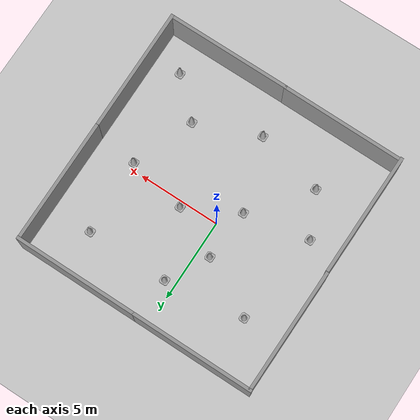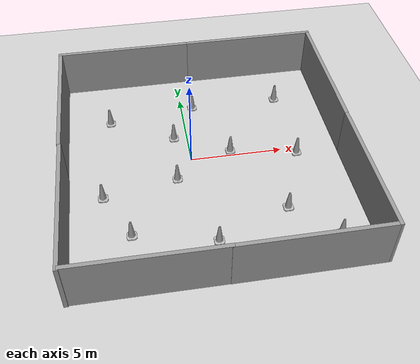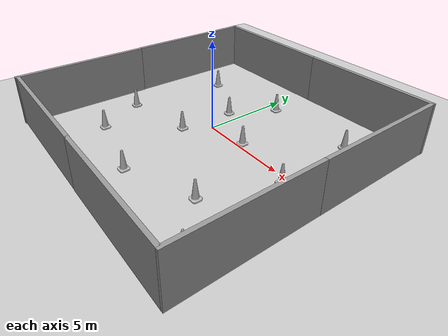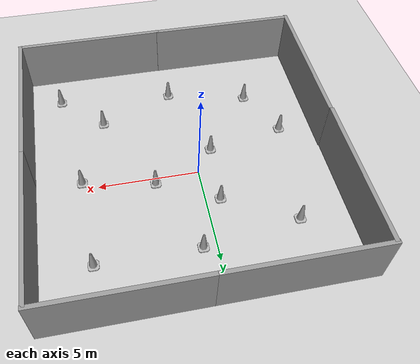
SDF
<?xml version="1.0" ?>
<sdf version="1.4">
  <!-- We use a custom world for the eng so that the camera angle is launched correctly -->

  <world name="default">
    <include>
      <uri>model://ground_plane</uri>
    </include>

    <!-- Global light source -->
    <include>
      <uri>model://sun</uri>
    </include>

<!--input cone-->
    <model name='grey_wall'>
      <static>1</static>
      <link name='link'>
        <pose frame=''>0 0 1.4 0 -0 0</pose>
        <collision name='collision'>
          <geometry>
            <box>
              <size>7.5 0.2 2.8</size>
            </box>
          </geometry>
          <max_contacts>10</max_contacts>
          <surface>
            <contact>
              <ode/>
            </contact>
            <bounce/>
            <friction>
              <torsional>
                <ode/>
              </torsional>
              <ode/>
            </friction>
          </surface>
        </collision>
        <visual name='visual'>
          <cast_shadows>0</cast_shadows>
          <geometry>
            <box>
              <size>7.5 0.2 2.8</size>
            </box>
          </geometry>
          <material>
            <script>
              <uri>model://grey_wall/materials/scripts</uri>
              <uri>model://grey_wall/materials/textures</uri>
              <name>vrc/grey_wall</name>
            </script>
          </material>
        </visual>
        <self_collide>0</self_collide>
        <enable_wind>0</enable_wind>
        <kinematic>0</kinematic>
      </link>
      <pose frame=''>4.48539 6.9188 0 0 -0 0</pose>
    </model>
    <model name='grey_wall_0'>
      <static>1</static>
      <link name='link'>
        <pose frame=''>0 0 1.4 0 -0 0</pose>
        <collision name='collision'>
          <geometry>
            <box>
              <size>7.5 0.2 2.8</size>
            </box>
          </geometry>
          <max_contacts>10</max_contacts>
          <surface>
            <contact>
              <ode/>
            </contact>
            <bounce/>
            <friction>
              <torsional>
                <ode/>
              </torsional>
              <ode/>
            </friction>
          </surface>
        </collision>
        <visual name='visual'>
          <cast_shadows>0</cast_shadows>
          <geometry>
            <box>
              <size>7.5 0.2 2.8</size>
            </box>
          </geometry>
          <material>
            <script>
              <uri>model://grey_wall/materials/scripts</uri>
              <uri>model://grey_wall/materials/textures</uri>
              <name>vrc/grey_wall</name>
            </script>
          </material>
        </visual>
        <self_collide>0</self_collide>
        <enable_wind>0</enable_wind>
        <kinematic>0</kinematic>
      </link>
      <pose frame=''>-6.63731 3.16199 0 0 0 -1.58095</pose>
    </model>
    <model name='grey_wall_1'>
      <static>1</static>
      <link name='link'>
        <pose frame=''>0 0 1.4 0 -0 0</pose>
        <collision name='collision'>
          <geometry>
            <box>
              <size>7.5 0.2 2.8</size>
            </box>
          </geometry>
          <max_contacts>10</max_contacts>
          <surface>
            <contact>
              <ode/>
            </contact>
            <bounce/>
            <friction>
              <torsional>
                <ode/>
              </torsional>
              <ode/>
            </friction>
          </surface>
        </collision>
        <visual name='visual'>
          <cast_shadows>0</cast_shadows>
          <geometry>
            <box>
              <size>7.5 0.2 2.8</size>
            </box>
          </geometry>
          <material>
            <script>
              <uri>model://grey_wall/materials/scripts</uri>
              <uri>model://grey_wall/materials/textures</uri>
              <name>vrc/grey_wall</name>
            </script>
          </material>
        </visual>
        <self_collide>0</self_collide>
        <enable_wind>0</enable_wind>
        <kinematic>0</kinematic>
      </link>
      <pose frame=''>4.40646 -7.99901 0 0 -0 0</pose>
    </model>
    <model name='grey_wall_2'>
      <static>1</static>
      <link name='link'>
        <pose frame=''>0 0 1.4 0 -0 0</pose>
        <collision name='collision'>
          <geometry>
            <box>
              <size>7.5 0.2 2.8</size>
            </box>
          </geometry>
          <max_contacts>10</max_contacts>
          <surface>
            <contact>
              <ode/>
            </contact>
            <bounce/>
            <friction>
              <torsional>
                <ode/>
              </torsional>
              <ode/>
            </friction>
          </surface>
        </collision>
        <visual name='visual'>
          <cast_shadows>0</cast_shadows>
          <geometry>
            <box>
              <size>7.5 0.2 2.8</size>
            </box>
          </geometry>
          <material>
            <script>
              <uri>model://grey_wall/materials/scripts</uri>
              <uri>model://grey_wall/materials/textures</uri>
              <name>vrc/grey_wall</name>
            </script>
          </material>
        </visual>
        <self_collide>0</self_collide>
        <enable_wind>0</enable_wind>
        <kinematic>0</kinematic>
      </link>
      <pose frame=''>8.13898 3.15469 0 0 0 -1.56806</pose>
    </model>
    <model name='Construction Cone'>
      <link name='link'>
        <collision name='collision'>
          <geometry>
            <mesh>
              <scale>10 10 10</scale>
              <uri>model://construction_cone/meshes/construction_cone.dae</uri>
            </mesh>
          </geometry>
          <max_contacts>10</max_contacts>
          <surface>
            <contact>
              <ode/>
            </contact>
            <bounce/>
            <friction>
              <torsional>
                <ode/>
              </torsional>
              <ode/>
            </friction>
          </surface>
        </collision>
        <visual name='visual'>
          <geometry>
            <mesh>
              <scale>10 10 10</scale>
              <uri>model://construction_cone/meshes/construction_cone.dae</uri>
            </mesh>
          </geometry>
        </visual>
        <self_collide>0</self_collide>
        <inertial>
          <pose frame=''>0 0 0 0 -0 0</pose>
          <inertia>
            <ixx>1</ixx>
            <ixy>0</ixy>
            <ixz>0</ixz>
            <iyy>1</iyy>
            <iyz>0</iyz>
            <izz>1</izz>
          </inertia>
          <mass>1</mass>
        </inertial>
        <enable_wind>0</enable_wind>
        <kinematic>0</kinematic>
      </link>
      <pose frame=''>-0.917391 -1.33529 0 0 -0 0</pose>
    </model>
    <model name='Construction Cone_0'>
      <link name='link'>
        <collision name='collision'>
          <geometry>
            <mesh>
              <scale>10 10 10</scale>
              <uri>model://construction_cone/meshes/construction_cone.dae</uri>
            </mesh>
          </geometry>
          <max_contacts>10</max_contacts>
          <surface>
            <contact>
              <ode/>
            </contact>
            <bounce/>
            <friction>
              <torsional>
                <ode/>
              </torsional>
              <ode/>
            </friction>
          </surface>
        </collision>
        <visual name='visual'>
          <geometry>
            <mesh>
              <scale>10 10 10</scale>
              <uri>model://construction_cone/meshes/construction_cone.dae</uri>
            </mesh>
          </geometry>
        </visual>
        <self_collide>0</self_collide>
        <inertial>
          <pose frame=''>0 0 0 0 -0 0</pose>
          <inertia>
            <ixx>1</ixx>
            <ixy>0</ixy>
            <ixz>0</ixz>
            <iyy>1</iyy>
            <iyz>0</iyz>
            <izz>1</izz>
          </inertia>
          <mass>1</mass>
        </inertial>
        <enable_wind>0</enable_wind>
        <kinematic>0</kinematic>
      </link>
      <pose frame=''>2.21328 0.316398 0 0 -0 0</pose>
    </model>
    <model name='Construction Cone_1'>
      <link name='link'>
        <collision name='collision'>
          <geometry>
            <mesh>
              <scale>10 10 10</scale>
              <uri>model://construction_cone/meshes/construction_cone.dae</uri>
            </mesh>
          </geometry>
          <max_contacts>10</max_contacts>
          <surface>
            <contact>
              <ode/>
            </contact>
            <bounce/>
            <friction>
              <torsional>
                <ode/>
              </torsional>
              <ode/>
            </friction>
          </surface>
        </collision>
        <visual name='visual'>
          <geometry>
            <mesh>
              <scale>10 10 10</scale>
              <uri>model://construction_cone/meshes/construction_cone.dae</uri>
            </mesh>
          </geometry>
        </visual>
        <self_collide>0</self_collide>
        <inertial>
          <pose frame=''>0 0 0 0 -0 0</pose>
          <inertia>
            <ixx>1</ixx>
            <ixy>0</ixy>
            <ixz>0</ixz>
            <iyy>1</iyy>
            <iyz>0</iyz>
            <izz>1</izz>
          </inertia>
          <mass>1</mass>
        </inertial>
        <enable_wind>0</enable_wind>
        <kinematic>0</kinematic>
      </link>
      <pose frame=''>-0.720823 1.76762 0 0 -0 0</pose>
    </model>
    <model name='grey_wall_clone'>
      <static>1</static>
      <link name='link'>
        <pose frame=''>0 0 1.4 0 -0 0</pose>
        <collision name='collision'>
          <geometry>
            <box>
              <size>7.5 0.2 2.8</size>
            </box>
          </geometry>
          <max_contacts>10</max_contacts>
          <surface>
            <contact>
              <ode/>
            </contact>
            <bounce/>
            <friction>
              <torsional>
                <ode/>
              </torsional>
              <ode/>
            </friction>
          </surface>
        </collision>
        <visual name='visual'>
          <cast_shadows>0</cast_shadows>
          <geometry>
            <box>
              <size>7.5 0.2 2.8</size>
            </box>
          </geometry>
          <material>
            <script>
              <uri>model://grey_wall/materials/scripts</uri>
              <uri>model://grey_wall/materials/textures</uri>
              <name>vrc/grey_wall</name>
            </script>
          </material>
        </visual>
        <self_collide>0</self_collide>
        <enable_wind>0</enable_wind>
        <kinematic>0</kinematic>
      </link>
      <pose frame=''>-2.97859 6.91763 0 0 -0 0</pose>
    </model>
    <model name='grey_wall_clone_0'>
      <static>1</static>
      <link name='link'>
        <pose frame=''>0 0 1.4 0 -0 0</pose>
        <collision name='collision'>
          <geometry>
            <box>
              <size>7.5 0.2 2.8</size>
            </box>
          </geometry>
          <max_contacts>10</max_contacts>
          <surface>
            <contact>
              <ode/>
            </contact>
            <bounce/>
            <friction>
              <torsional>
                <ode/>
              </torsional>
              <ode/>
            </friction>
          </surface>
        </collision>
        <visual name='visual'>
          <cast_shadows>0</cast_shadows>
          <geometry>
            <box>
              <size>7.5 0.2 2.8</size>
            </box>
          </geometry>
          <material>
            <script>
              <uri>model://grey_wall/materials/scripts</uri>
              <uri>model://grey_wall/materials/textures</uri>
              <name>vrc/grey_wall</name>
            </script>
          </material>
        </visual>
        <self_collide>0</self_collide>
        <enable_wind>0</enable_wind>
        <kinematic>0</kinematic>
      </link>
      <pose frame=''>8.16819 -4.34677 0 0 0 -1.56465</pose>
    </model>
    <model name='grey_wall_0_clone'>
      <static>1</static>
      <link name='link'>
        <pose frame=''>0 0 1.4 0 -0 0</pose>
        <collision name='collision'>
          <geometry>
            <box>
              <size>7.5 0.2 2.8</size>
            </box>
          </geometry>
          <max_contacts>10</max_contacts>
          <surface>
            <contact>
              <ode/>
            </contact>
            <bounce/>
            <friction>
              <torsional>
                <ode/>
              </torsional>
              <ode/>
            </friction>
          </surface>
        </collision>
        <visual name='visual'>
          <cast_shadows>0</cast_shadows>
          <geometry>
            <box>
              <size>7.5 0.2 2.8</size>
            </box>
          </geometry>
          <material>
            <script>
              <uri>model://grey_wall/materials/scripts</uri>
              <uri>model://grey_wall/materials/textures</uri>
              <name>vrc/grey_wall</name>
            </script>
          </material>
        </visual>
        <self_collide>0</self_collide>
        <enable_wind>0</enable_wind>
        <kinematic>0</kinematic>
      </link>
      <pose frame=''>-6.67657 -4.3432 0 0 0 -1.58095</pose>
    </model>
    <model name='grey_wall_0_clone_clone'>
      <static>1</static>
      <link name='link'>
        <pose frame=''>0 0 1.4 0 -0 0</pose>
        <collision name='collision'>
          <geometry>
            <box>
              <size>7.5 0.2 2.8</size>
            </box>
          </geometry>
          <max_contacts>10</max_contacts>
          <surface>
            <contact>
              <ode/>
            </contact>
            <bounce/>
            <friction>
              <torsional>
                <ode/>
              </torsional>
              <ode/>
            </friction>
          </surface>
        </collision>
        <visual name='visual'>
          <cast_shadows>0</cast_shadows>
          <geometry>
            <box>
              <size>7.5 0.2 2.8</size>
            </box>
          </geometry>
          <material>
            <script>
              <uri>model://grey_wall/materials/scripts</uri>
              <uri>model://grey_wall/materials/textures</uri>
              <name>vrc/grey_wall</name>
            </script>
          </material>
        </visual>
        <self_collide>0</self_collide>
        <enable_wind>0</enable_wind>
        <kinematic>0</kinematic>
      </link>
      <pose frame=''>-2.97602 -7.96604 0 0 -0 3.13587</pose>
    </model>
    <model name='Construction Cone_2'>
      <link name='link'>
        <collision name='collision'>
          <geometry>
            <mesh>
              <scale>10 10 10</scale>
              <uri>model://construction_cone/meshes/construction_cone.dae</uri>
            </mesh>
          </geometry>
          <max_contacts>10</max_contacts>
          <surface>
            <contact>
              <ode/>
            </contact>
            <bounce/>
            <friction>
              <torsional>
                <ode/>
              </torsional>
              <ode/>
            </friction>
          </surface>
        </collision>
        <visual name='visual'>
          <geometry>
            <mesh>
              <scale>10 10 10</scale>
              <uri>model://construction_cone/meshes/construction_cone.dae</uri>
            </mesh>
          </geometry>
        </visual>
        <self_collide>0</self_collide>
        <inertial>
          <pose frame=''>0 0 0 0 -0 0</pose>
          <inertia>
            <ixx>1</ixx>
            <ixy>0</ixy>
            <ixz>0</ixz>
            <iyy>1</iyy>
            <iyz>0</iyz>
            <izz>1</izz>
          </inertia>
          <mass>1</mass>
        </inertial>
        <enable_wind>0</enable_wind>
        <kinematic>0</kinematic>
      </link>
      <pose frame=''>-3.57271 -4.68316 0 0 -0 0</pose>
    </model>
    <model name='Construction Cone_2_clone'>
      <link name='link'>
        <collision name='collision'>
          <geometry>
            <mesh>
              <scale>10 10 10</scale>
              <uri>model://construction_cone/meshes/construction_cone.dae</uri>
            </mesh>
          </geometry>
          <max_contacts>10</max_contacts>
          <surface>
            <contact>
              <ode/>
            </contact>
            <bounce/>
            <friction>
              <torsional>
                <ode/>
              </torsional>
              <ode/>
            </friction>
          </surface>
        </collision>
        <visual name='visual'>
          <geometry>
            <mesh>
              <scale>10 10 10</scale>
              <uri>model://construction_cone/meshes/construction_cone.dae</uri>
            </mesh>
          </geometry>
        </visual>
        <self_collide>0</self_collide>
        <inertial>
          <pose frame=''>0 0 0 0 -0 0</pose>
          <inertia>
            <ixx>1</ixx>
            <ixy>0</ixy>
            <ixz>0</ixz>
            <iyy>1</iyy>
            <iyz>0</iyz>
            <izz>1</izz>
          </inertia>
          <mass>1</mass>
        </inertial>
        <enable_wind>0</enable_wind>
        <kinematic>0</kinematic>
      </link>
      <pose frame=''>4.36085 -4.1214 -0 0 -0 0</pose>
    </model>
    <model name='Construction Cone_2_clone_0'>
      <link name='link'>
        <collision name='collision'>
          <geometry>
            <mesh>
              <scale>10 10 10</scale>
              <uri>model://construction_cone/meshes/construction_cone.dae</uri>
            </mesh>
          </geometry>
          <max_contacts>10</max_contacts>
          <surface>
            <contact>
              <ode/>
            </contact>
            <bounce/>
            <friction>
              <torsional>
                <ode/>
              </torsional>
              <ode/>
            </friction>
          </surface>
        </collision>
        <visual name='visual'>
          <geometry>
            <mesh>
              <scale>10 10 10</scale>
              <uri>model://construction_cone/meshes/construction_cone.dae</uri>
            </mesh>
          </geometry>
        </visual>
        <self_collide>0</self_collide>
        <inertial>
          <pose frame=''>0 0 0 0 -0 0</pose>
          <inertia>
            <ixx>1</ixx>
            <ixy>0</ixy>
            <ixz>0</ixz>
            <iyy>1</iyy>
            <iyz>0</iyz>
            <izz>1</izz>
          </inertia>
          <mass>1</mass>
        </inertial>
        <enable_wind>0</enable_wind>
        <kinematic>0</kinematic>
      </link>
      <pose frame=''>5.61637 4.21995 -0 0 -0 0</pose>
    </model>
    <model name='Construction Cone_2_clone_1'>
      <link name='link'>
        <collision name='collision'>
          <geometry>
            <mesh>
              <scale>10 10 10</scale>
              <uri>model://construction_cone/meshes/construction_cone.dae</uri>
            </mesh>
          </geometry>
          <max_contacts>10</max_contacts>
          <surface>
            <contact>
              <ode/>
            </contact>
            <bounce/>
            <friction>
              <torsional>
                <ode/>
              </torsional>
              <ode/>
            </friction>
          </surface>
        </collision>
        <visual name='visual'>
          <geometry>
            <mesh>
              <scale>10 10 10</scale>
              <uri>model://construction_cone/meshes/construction_cone.dae</uri>
            </mesh>
          </geometry>
        </visual>
        <self_collide>0</self_collide>
        <inertial>
          <pose frame=''>0 0 0 0 -0 0</pose>
          <inertia>
            <ixx>1</ixx>
            <ixy>0</ixy>
            <ixz>0</ixz>
            <iyy>1</iyy>
            <iyz>0</iyz>
            <izz>1</izz>
          </inertia>
          <mass>1</mass>
        </inertial>
        <enable_wind>0</enable_wind>
        <kinematic>0</kinematic>
      </link>
      <pose frame=''>0.649865 4.21846 -0 0 -0 0</pose>
    </model>
    <model name='Construction Cone_2_clone_2'>
      <link name='link'>
        <collision name='collision'>
          <geometry>
            <mesh>
              <scale>10 10 10</scale>
              <uri>model://construction_cone/meshes/construction_cone.dae</uri>
            </mesh>
          </geometry>
          <max_contacts>10</max_contacts>
          <surface>
            <contact>
              <ode/>
            </contact>
            <bounce/>
            <friction>
              <torsional>
                <ode/>
              </torsional>
              <ode/>
            </friction>
          </surface>
        </collision>
        <visual name='visual'>
          <geometry>
            <mesh>
              <scale>10 10 10</scale>
              <uri>model://construction_cone/meshes/construction_cone.dae</uri>
            </mesh>
          </geometry>
        </visual>
        <self_collide>0</self_collide>
        <inertial>
          <pose frame=''>0 0 0 0 -0 0</pose>
          <inertia>
            <ixx>1</ixx>
            <ixy>0</ixy>
            <ixz>0</ixz>
            <iyy>1</iyy>
            <iyz>0</iyz>
            <izz>1</izz>
          </inertia>
          <mass>1</mass>
        </inertial>
        <enable_wind>0</enable_wind>
        <kinematic>0</kinematic>
      </link>
      <pose frame=''>-4.14933 3.56766 -0 0 -0 0</pose>
    </model>
    <model name='Construction Cone_2_clone_3'>
      <link name='link'>
        <collision name='collision'>
          <geometry>
            <mesh>
              <scale>10 10 10</scale>
              <uri>model://construction_cone/meshes/construction_cone.dae</uri>
            </mesh>
          </geometry>
          <max_contacts>10</max_contacts>
          <surface>
            <contact>
              <ode/>
            </contact>
            <bounce/>
            <friction>
              <torsional>
                <ode/>
              </torsional>
              <ode/>
            </friction>
          </surface>
        </collision>
        <visual name='visual'>
          <geometry>
            <mesh>
              <scale>10 10 10</scale>
              <uri>model://construction_cone/meshes/construction_cone.dae</uri>
            </mesh>
          </geometry>
        </visual>
        <self_collide>0</self_collide>
        <inertial>
          <pose frame=''>0 0 0 0 -0 0</pose>
          <inertia>
            <ixx>1</ixx>
            <ixy>0</ixy>
            <ixz>0</ixz>
            <iyy>1</iyy>
            <iyz>0</iyz>
            <izz>1</izz>
          </inertia>
          <mass>1</mass>
        </inertial>
        <enable_wind>0</enable_wind>
        <kinematic>0</kinematic>
      </link>
      <pose frame=''>-4.8394 -2.07053 -0 0 -0 0</pose>
    </model>
    <model name='Construction Cone_2_clone_4'>
      <link name='link'>
        <collision name='collision'>
          <geometry>
            <mesh>
              <scale>10 10 10</scale>
              <uri>model://construction_cone/meshes/construction_cone.dae</uri>
            </mesh>
          </geometry>
          <max_contacts>10</max_contacts>
          <surface>
            <contact>
              <ode/>
            </contact>
            <bounce/>
            <friction>
              <torsional>
                <ode/>
              </torsional>
              <ode/>
            </friction>
          </surface>
        </collision>
        <visual name='visual'>
          <geometry>
            <mesh>
              <scale>10 10 10</scale>
              <uri>model://construction_cone/meshes/construction_cone.dae</uri>
            </mesh>
          </geometry>
        </visual>
        <self_collide>0</self_collide>
        <inertial>
          <pose frame=''>0 0 0 0 -0 0</pose>
          <inertia>
            <ixx>1</ixx>
            <ixy>0</ixy>
            <ixz>0</ixz>
            <iyy>1</iyy>
            <iyz>0</iyz>
            <izz>1</izz>
          </inertia>
          <mass>1</mass>
        </inertial>
        <enable_wind>0</enable_wind>
        <kinematic>0</kinematic>
      </link>
      <pose frame=''>0.558805 -5.63006 -0 0 -0 0</pose>
    </model>
    <model name='Construction Cone_2_clone_5'>
      <link name='link'>
        <collision name='collision'>
          <geometry>
            <mesh>
              <scale>10 10 10</scale>
              <uri>model://construction_cone/meshes/construction_cone.dae</uri>
            </mesh>
          </geometry>
          <max_contacts>10</max_contacts>
          <surface>
            <contact>
              <ode/>
            </contact>
            <bounce/>
            <friction>
              <torsional>
                <ode/>
              </torsional>
              <ode/>
            </friction>
          </surface>
        </collision>
        <visual name='visual'>
          <geometry>
            <mesh>
              <scale>10 10 10</scale>
              <uri>model://construction_cone/meshes/construction_cone.dae</uri>
            </mesh>
          </geometry>
        </visual>
        <self_collide>0</self_collide>
        <inertial>
          <pose frame=''>0 0 0 0 -0 0</pose>
          <inertia>
            <ixx>1</ixx>
            <ixy>0</ixy>
            <ixz>0</ixz>
            <iyy>1</iyy>
            <iyz>0</iyz>
            <izz>1</izz>
          </inertia>
          <mass>1</mass>
        </inertial>
        <enable_wind>0</enable_wind>
        <kinematic>0</kinematic>
      </link>
      <pose frame=''>5.7811 -0.37537 -0 0 -0 0</pose>
    </model>
    <model name='Construction Cone_2_clone_6'>
      <link name='link'>
        <collision name='collision'>
          <geometry>
            <mesh>
              <scale>10 10 10</scale>
              <uri>model://construction_cone/meshes/construction_cone.dae</uri>
            </mesh>
          </geometry>
          <max_contacts>10</max_contacts>
          <surface>
            <contact>
              <ode/>
            </contact>
            <bounce/>
            <friction>
              <torsional>
                <ode/>
              </torsional>
              <ode/>
            </friction>
          </surface>
        </collision>
        <visual name='visual'>
          <geometry>
            <mesh>
              <scale>10 10 10</scale>
              <uri>model://construction_cone/meshes/construction_cone.dae</uri>
            </mesh>
          </geometry>
        </visual>
        <self_collide>0</self_collide>
        <inertial>
          <pose frame=''>0 0 0 0 -0 0</pose>
          <inertia>
            <ixx>1</ixx>
            <ixy>0</ixy>
            <ixz>0</ixz>
            <iyy>1</iyy>
            <iyz>0</iyz>
            <izz>1</izz>
          </inertia>
          <mass>1</mass>
        </inertial>
        <enable_wind>0</enable_wind>
        <kinematic>0</kinematic>
      </link>
      <pose frame=''>6.50414 -6.14432 -0 0 -0 0</pose>
    </model>
<!--end here-->
    <!-- Focus camera on tall pendulum -->
    <gui fullscreen='0'>
      <camera name='user_camera'>
        <pose>4.927360 -4.376610 3.740080 0.000000 0.275643 2.356190</pose>
        <view_controller>orbit</view_controller>
      </camera>
    </gui>

  </world>
</sdf>
